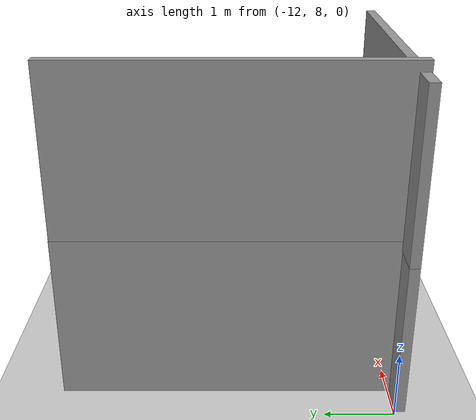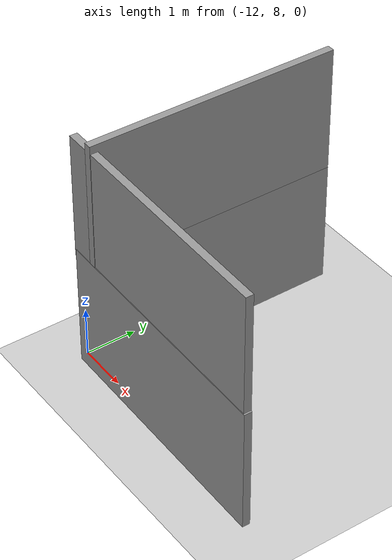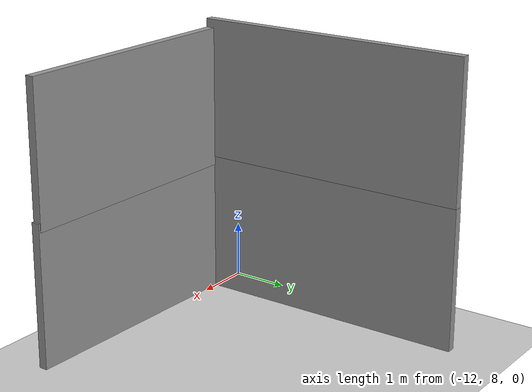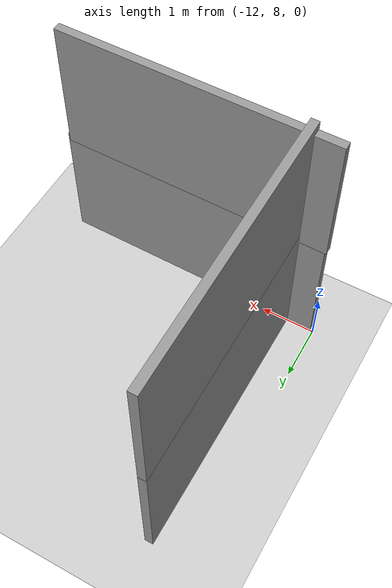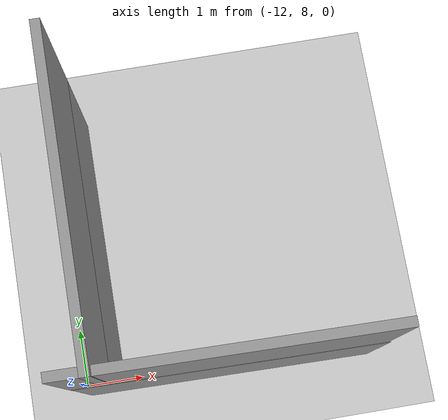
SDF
<sdf version="1.6">
 <world name="default">
  <model name="ground_plane">
   <static>1</static>
   <link name="link">
    <collision name="collision">
     <geometry><plane><normal>0 0 1</normal><size>100 100</size></plane></geometry>
     <surface><friction><ode><mu>100</mu><mu2>50</mu2></ode></friction></surface>
    </collision>
    <visual name="visual">
     <cast_shadows>0</cast_shadows>
     <geometry><plane><normal>0 0 1</normal><size>100 100</size></plane></geometry>
     <material>
      <script><uri>file://media/materials/scripts/gazebo.material</uri><name>Gazebo/Grey</name></script>
     </material>
    </visual>
   </link>
  </model>
  <model name="5mWall">
   <pose>-11.4018 10.3244 0 0 -0 0</pose>
   <link name="Wall_0">
    <collision name="Wall_0_Collision">
     <geometry><box><size>5 0.15 2.5</size></box></geometry>
     <pose>0 0 1.25 0 -0 0</pose>
    </collision>
    <visual name="Wall_0_Visual">
     <pose>0 0 1.25 0 -0 0</pose>
     <geometry><box><size>5 0.15 2.5</size></box></geometry>
     <material>
      <script><uri>file://media/materials/scripts/gazebo.material</uri><name>Gazebo/Grey</name></script>
      <ambient>1 1 1 1</ambient>
     </material>
     <meta><layer>0</layer></meta>
    </visual>
    <pose>0 -0 0 0 -0 1.5708</pose>
   </link>
   <static>1</static>
  </model>
  <model name="5mWall_0">
   <pose>-11.4 10.32 2.5 0 -0 0</pose>
   <link name="Wall_0">
    <collision name="Wall_0_Collision">
     <geometry><box><size>5 0.15 2.5</size></box></geometry>
     <pose>0 0 1.25 0 -0 0</pose>
    </collision>
    <visual name="Wall_0_Visual">
     <pose>0 0 1.25 0 -0 0</pose>
     <geometry><box><size>5 0.15 2.5</size></box></geometry>
     <material>
      <script><uri>file://media/materials/scripts/gazebo.material</uri><name>Gazebo/Grey</name></script>
      <ambient>1 1 1 1</ambient>
     </material>
     <meta><layer>0</layer></meta>
    </visual>
    <pose>0 -0 0 0 -0 1.5708</pose>
   </link>
   <static>1</static>
  </model>
  <model name="5mWall_1">
   <pose>-9.47185 7.87148 2.34743 0 0 -1.58811</pose>
   <link name="Wall_0">
    <collision name="Wall_0_Collision">
     <geometry><box><size>5 0.15 2.5</size></box></geometry>
     <pose>0 0 1.25 0 -0 0</pose>
    </collision>
    <visual name="Wall_0_Visual">
     <pose>0 0 1.25 0 -0 0</pose>
     <geometry><box><size>5 0.15 2.5</size></box></geometry>
     <material>
      <script><uri>file://media/materials/scripts/gazebo.material</uri><name>Gazebo/Grey</name></script>
      <ambient>1 1 1 1</ambient>
     </material>
     <meta><layer>0</layer></meta>
    </visual>
    <pose>0 -0 0 0 -0 1.5708</pose>
   </link>
   <static>1</static>
  </model>
  <model name="5mWall_1_clone">
   <pose>-9.44014 7.86233 0 0 0 -1.58811</pose>
   <link name="Wall_0">
    <collision name="Wall_0_Collision">
     <geometry><box><size>5 0.15 2.5</size></box></geometry>
     <pose>0 0 1.25 0 -0 0</pose>
    </collision>
    <visual name="Wall_0_Visual">
     <pose>0 0 1.25 0 -0 0</pose>
     <geometry><box><size>5 0.15 2.5</size></box></geometry>
     <material>
      <script><uri>file://media/materials/scripts/gazebo.material</uri><name>Gazebo/Grey</name></script>
      <ambient>1 1 1 1</ambient>
     </material>
     <meta><layer>0</layer></meta>
    </visual>
    <pose>0 -0 0 0 -0 1.5708</pose>
   </link>
   <static>1</static>
  </model>
 </world>
</sdf>
